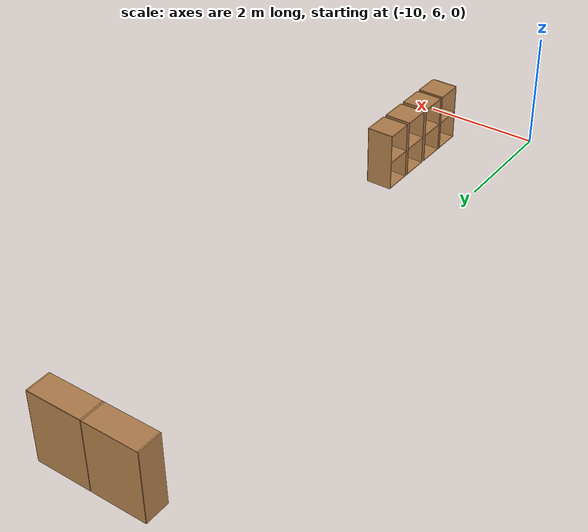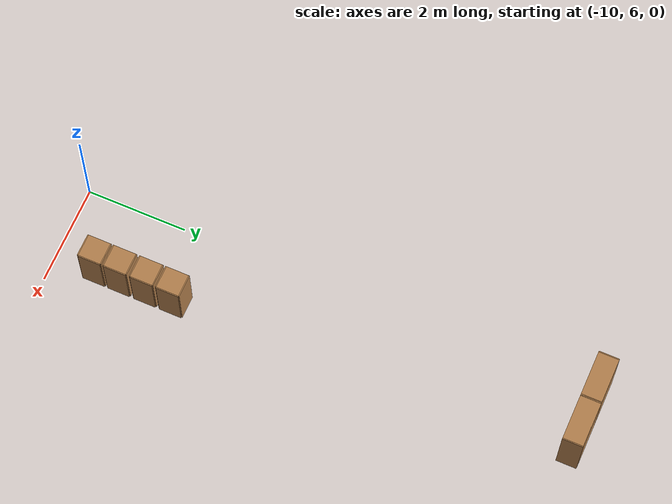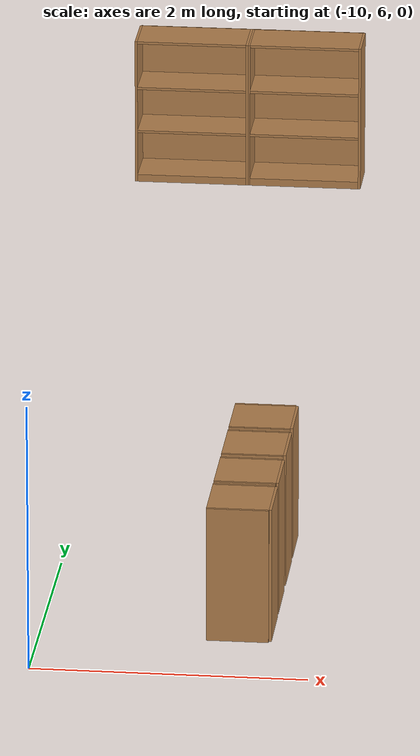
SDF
<sdf version="1.6">
 <world name="default">
  <light name="sun" type="directional">
   <pose>0 0 10 0 -0 0</pose>
   <diffuse>0.8 0.8 0.8 1</diffuse>
   <specular>0.2 0.2 0.2 1</specular>
   <attenuation>
    <range>1000</range>
    <constant>0.9</constant>
    <linear>0.01</linear>
    <quadratic>0.001</quadratic>
   </attenuation>
   <direction>-0.5 0.1 -0.9</direction>
  </light>
  <gravity>0 0 -9.8</gravity>
  <magnetic_field>6e-06 2.3e-05 -4.2e-05</magnetic_field>
  <atmosphere type="adiabatic"/>
  <physics name="default_physics" default="0" type="ode">
   <max_step_size>0.001</max_step_size>
   <real_time_factor>1</real_time_factor>
   <real_time_update_rate>1000</real_time_update_rate>
  </physics>
  <scene><ambient>0.4 0.4 0.4 1</ambient><background>0.7 0.7 0.7 1</background><shadows>1</shadows></scene>
  <audio><device>default</device></audio>
  <spherical_coordinates>
   <surface_model>EARTH_WGS84</surface_model>
   <latitude_deg>0</latitude_deg>
   <longitude_deg>0</longitude_deg>
   <elevation>0</elevation>
   <heading_deg>0</heading_deg>
  </spherical_coordinates>
  <model name="bookshelf">
   <static>1</static>
   <link name="link">
    <inertial><mass>1</mass></inertial>
    <collision name="back">
     <pose>0 0.005 0.6 0 -0 0</pose>
     <geometry><box><size>0.9 0.01 1.2</size></box></geometry>
    </collision>
    <visual name="visual1">
     <pose>0 0.005 0.6 0 -0 0</pose>
     <geometry><box><size>0.9 0.01 1.2</size></box></geometry>
     <material>
      <script><uri>file://media/materials/scripts/gazebo.material</uri><name>Gazebo/Wood</name></script>
     </material>
    </visual>
    <collision name="left_side">
     <pose>0.45 -0.195 0.6 0 -0 0</pose>
     <geometry><box><size>0.02 0.4 1.2</size></box></geometry>
    </collision>
    <visual name="visual2">
     <pose>0.45 -0.195 0.6 0 -0 0</pose>
     <geometry><box><size>0.02 0.4 1.2</size></box></geometry>
     <material>
      <script><uri>file://media/materials/scripts/gazebo.material</uri><name>Gazebo/Wood</name></script>
     </material>
    </visual>
    <collision name="right_side">
     <pose>-0.45 -0.195 0.6 0 -0 0</pose>
     <geometry><box><size>0.02 0.4 1.2</size></box></geometry>
    </collision>
    <visual name="visual3">
     <pose>-0.45 -0.195 0.6 0 -0 0</pose>
     <geometry><box><size>0.02 0.4 1.2</size></box></geometry>
     <material>
      <script><uri>file://media/materials/scripts/gazebo.material</uri><name>Gazebo/Wood</name></script>
     </material>
    </visual>
    <collision name="bottom">
     <pose>0 -0.195 0.03 0 -0 0</pose>
     <geometry><box><size>0.88 0.4 0.06</size></box></geometry>
    </collision>
    <visual name="visual4">
     <pose>0 -0.195 0.03 0 -0 0</pose>
     <geometry><box><size>0.88 0.4 0.06</size></box></geometry>
     <material>
      <script><uri>file://media/materials/scripts/gazebo.material</uri><name>Gazebo/Wood</name></script>
     </material>
    </visual>
    <collision name="top">
     <pose>0 -0.195 1.19 0 -0 0</pose>
     <geometry><box><size>0.88 0.4 0.02</size></box></geometry>
    </collision>
    <visual name="visual5">
     <pose>0 -0.195 1.19 0 -0 0</pose>
     <geometry><box><size>0.88 0.4 0.02</size></box></geometry>
     <material>
      <script><uri>file://media/materials/scripts/gazebo.material</uri><name>Gazebo/Wood</name></script>
     </material>
    </visual>
    <collision name="low_shelf">
     <pose>0 -0.195 0.43 0 -0 0</pose>
     <geometry><box><size>0.88 0.4 0.02</size></box></geometry>
    </collision>
    <visual name="visual6">
     <pose>0 -0.195 0.43 0 -0 0</pose>
     <geometry><box><size>0.88 0.4 0.02</size></box></geometry>
     <material>
      <script><uri>file://media/materials/scripts/gazebo.material</uri><name>Gazebo/Wood</name></script>
     </material>
    </visual>
    <collision name="high_shelf">
     <pose>0 -0.195 0.8 0 -0 0</pose>
     <geometry><box><size>0.88 0.4 0.02</size></box></geometry>
    </collision>
    <visual name="visual7">
     <pose>0 -0.195 0.8 0 -0 0</pose>
     <geometry><box><size>0.88 0.4 0.02</size></box></geometry>
     <material>
      <script><uri>file://media/materials/scripts/gazebo.material</uri><name>Gazebo/Wood</name></script>
     </material>
    </visual>
   </link>
   <pose>-8.98827 16.5746 0 0 -0 0</pose>
  </model>
  <model name="bookshelf_0">
   <static>1</static>
   <link name="link">
    <inertial><mass>1</mass></inertial>
    <collision name="back">
     <pose>0 0.005 0.6 0 -0 0</pose>
     <geometry><box><size>0.9 0.01 1.2</size></box></geometry>
    </collision>
    <visual name="visual1">
     <pose>0 0.005 0.6 0 -0 0</pose>
     <geometry><box><size>0.9 0.01 1.2</size></box></geometry>
     <material>
      <script><uri>file://media/materials/scripts/gazebo.material</uri><name>Gazebo/Wood</name></script>
     </material>
    </visual>
    <collision name="left_side">
     <pose>0.45 -0.195 0.6 0 -0 0</pose>
     <geometry><box><size>0.02 0.4 1.2</size></box></geometry>
    </collision>
    <visual name="visual2">
     <pose>0.45 -0.195 0.6 0 -0 0</pose>
     <geometry><box><size>0.02 0.4 1.2</size></box></geometry>
     <material>
      <script><uri>file://media/materials/scripts/gazebo.material</uri><name>Gazebo/Wood</name></script>
     </material>
    </visual>
    <collision name="right_side">
     <pose>-0.45 -0.195 0.6 0 -0 0</pose>
     <geometry><box><size>0.02 0.4 1.2</size></box></geometry>
    </collision>
    <visual name="visual3">
     <pose>-0.45 -0.195 0.6 0 -0 0</pose>
     <geometry><box><size>0.02 0.4 1.2</size></box></geometry>
     <material>
      <script><uri>file://media/materials/scripts/gazebo.material</uri><name>Gazebo/Wood</name></script>
     </material>
    </visual>
    <collision name="bottom">
     <pose>0 -0.195 0.03 0 -0 0</pose>
     <geometry><box><size>0.88 0.4 0.06</size></box></geometry>
    </collision>
    <visual name="visual4">
     <pose>0 -0.195 0.03 0 -0 0</pose>
     <geometry><box><size>0.88 0.4 0.06</size></box></geometry>
     <material>
      <script><uri>file://media/materials/scripts/gazebo.material</uri><name>Gazebo/Wood</name></script>
     </material>
    </visual>
    <collision name="top">
     <pose>0 -0.195 1.19 0 -0 0</pose>
     <geometry><box><size>0.88 0.4 0.02</size></box></geometry>
    </collision>
    <visual name="visual5">
     <pose>0 -0.195 1.19 0 -0 0</pose>
     <geometry><box><size>0.88 0.4 0.02</size></box></geometry>
     <material>
      <script><uri>file://media/materials/scripts/gazebo.material</uri><name>Gazebo/Wood</name></script>
     </material>
    </visual>
    <collision name="low_shelf">
     <pose>0 -0.195 0.43 0 -0 0</pose>
     <geometry><box><size>0.88 0.4 0.02</size></box></geometry>
    </collision>
    <visual name="visual6">
     <pose>0 -0.195 0.43 0 -0 0</pose>
     <geometry><box><size>0.88 0.4 0.02</size></box></geometry>
     <material>
      <script><uri>file://media/materials/scripts/gazebo.material</uri><name>Gazebo/Wood</name></script>
     </material>
    </visual>
    <collision name="high_shelf">
     <pose>0 -0.195 0.8 0 -0 0</pose>
     <geometry><box><size>0.88 0.4 0.02</size></box></geometry>
    </collision>
    <visual name="visual7">
     <pose>0 -0.195 0.8 0 -0 0</pose>
     <geometry><box><size>0.88 0.4 0.02</size></box></geometry>
     <material>
      <script><uri>file://media/materials/scripts/gazebo.material</uri><name>Gazebo/Wood</name></script>
     </material>
    </visual>
   </link>
   <pose>-9.90323 16.5746 0 0 -0 0</pose>
  </model>
  <light name="user_spot_light_0" type="spot">
   <pose>-15.2744 10.7249 1 0 -0 0</pose>
   <diffuse>0.5 0.5 0.5 1</diffuse>
   <specular>0.1 0.1 0.1 1</specular>
   <direction>0 0 -1</direction>
   <attenuation>
    <range>20</range>
    <constant>0.5</constant>
    <linear>0.01</linear>
    <quadratic>0.001</quadratic>
   </attenuation>
   <cast_shadows>0</cast_shadows>
   <spot><inner_angle>0.6</inner_angle><outer_angle>1</outer_angle><falloff>1</falloff></spot>
  </light>
  <light name="user_point_light_0" type="point">
   <pose>-15.4274 10.7578 1 0 -0 0</pose>
   <diffuse>0.5 0.5 0.5 1</diffuse>
   <specular>0.1 0.1 0.1 1</specular>
   <attenuation>
    <range>20</range>
    <constant>0.5</constant>
    <linear>0.01</linear>
    <quadratic>0.001</quadratic>
   </attenuation>
   <cast_shadows>0</cast_shadows>
   <direction>0 0 -1</direction>
  </light>
  <model name="cabinet">
   <static>1</static>
   <link name="cabinet_bottom_plate">
    <inertial>
     <pose>0 0 -1 0 -0 0</pose>
     <inertia><ixx>2.05</ixx><ixy>0</ixy><ixz>0</ixz><iyy>2.05</iyy><iyz>0</iyz><izz>2.05</izz></inertia>
     <mass>25</mass>
    </inertial>
    <collision name="cabinet_bottom_plate_geom">
     <pose>0 0 0.01 0 -0 0</pose>
     <geometry><box><size>0.45 0.45 0.02</size></box></geometry>
    </collision>
    <visual name="cabinet_bottom_plate_geom_visual">
     <pose>0 0 0.01 0 -0 0</pose>
     <geometry><box><size>0.45 0.45 0.02</size></box></geometry>
     <material>
      <script><uri>file://media/materials/scripts/gazebo.material</uri><name>Gazebo/Wood</name></script>
     </material>
    </visual>
    <collision name="cabinet_bottom_plate_geom_cabinet_back_plate">
     <pose>0.235 0 0.51 0 -0 0</pose>
     <geometry><box><size>0.02 0.45 1.02</size></box></geometry>
    </collision>
    <visual name="cabinet_bottom_plate_geom_cabinet_back_plate_visual">
     <pose>0.235 0 0.51 0 -0 0</pose>
     <geometry><box><size>0.02 0.45 1.02</size></box></geometry>
     <material>
      <script><uri>file://media/materials/scripts/gazebo.material</uri><name>Gazebo/Wood</name></script>
     </material>
    </visual>
    <collision name="cabinet_bottom_plate_geom_cabinet_left_plate">
     <pose>0 0.235 0.51 0 -0 0</pose>
     <geometry><box><size>0.45 0.02 1.02</size></box></geometry>
    </collision>
    <visual name="cabinet_bottom_plate_geom_cabinet_left_plate_visual">
     <pose>0 0.235 0.51 0 -0 0</pose>
     <geometry><box><size>0.45 0.02 1.02</size></box></geometry>
     <material>
      <script><uri>file://media/materials/scripts/gazebo.material</uri><name>Gazebo/Wood</name></script>
     </material>
    </visual>
    <collision name="cabinet_bottom_plate_geom_cabinet_middle_plate">
     <pose>0 0 0.51 0 -0 0</pose>
     <geometry><box><size>0.45 0.45 0.02</size></box></geometry>
    </collision>
    <visual name="cabinet_bottom_plate_geom_cabinet_middle_plate_visual">
     <pose>0 0 0.51 0 -0 0</pose>
     <geometry><box><size>0.45 0.45 0.02</size></box></geometry>
     <material>
      <script><uri>file://media/materials/scripts/gazebo.material</uri><name>Gazebo/Wood</name></script>
     </material>
    </visual>
    <collision name="cabinet_bottom_plate_geom_cabinet_right_plate">
     <pose>0 -0.235 0.51 0 -0 0</pose>
     <geometry><box><size>0.45 0.02 1.02</size></box></geometry>
    </collision>
    <visual name="cabinet_bottom_plate_geom_cabinet_right_plate_visual">
     <pose>0 -0.235 0.51 0 -0 0</pose>
     <geometry><box><size>0.45 0.02 1.02</size></box></geometry>
     <material>
      <script><uri>file://media/materials/scripts/gazebo.material</uri><name>Gazebo/Wood</name></script>
     </material>
    </visual>
    <collision name="cabinet_bottom_plate_geom_cabinet_top_plate">
     <pose>0 0 1.01 0 -0 0</pose>
     <geometry><box><size>0.45 0.45 0.02</size></box></geometry>
    </collision>
    <visual name="cabinet_bottom_plate_geom_cabinet_top_plate_visual">
     <pose>0 0 1.01 0 -0 0</pose>
     <geometry><box><size>0.45 0.45 0.02</size></box></geometry>
     <material>
      <script><uri>file://media/materials/scripts/gazebo.material</uri><name>Gazebo/Wood</name></script>
     </material>
    </visual>
   </link>
   <pose>-8.57161 8.48677 0 0 -0 0</pose>
  </model>
  <model name="cabinet_0">
   <static>1</static>
   <link name="cabinet_bottom_plate">
    <inertial>
     <pose>0 0 -1 0 -0 0</pose>
     <inertia><ixx>2.05</ixx><ixy>0</ixy><ixz>0</ixz><iyy>2.05</iyy><iyz>0</iyz><izz>2.05</izz></inertia>
     <mass>25</mass>
    </inertial>
    <collision name="cabinet_bottom_plate_geom">
     <pose>0 0 0.01 0 -0 0</pose>
     <geometry><box><size>0.45 0.45 0.02</size></box></geometry>
    </collision>
    <visual name="cabinet_bottom_plate_geom_visual">
     <pose>0 0 0.01 0 -0 0</pose>
     <geometry><box><size>0.45 0.45 0.02</size></box></geometry>
     <material>
      <script><uri>file://media/materials/scripts/gazebo.material</uri><name>Gazebo/Wood</name></script>
     </material>
    </visual>
    <collision name="cabinet_bottom_plate_geom_cabinet_back_plate">
     <pose>0.235 0 0.51 0 -0 0</pose>
     <geometry><box><size>0.02 0.45 1.02</size></box></geometry>
    </collision>
    <visual name="cabinet_bottom_plate_geom_cabinet_back_plate_visual">
     <pose>0.235 0 0.51 0 -0 0</pose>
     <geometry><box><size>0.02 0.45 1.02</size></box></geometry>
     <material>
      <script><uri>file://media/materials/scripts/gazebo.material</uri><name>Gazebo/Wood</name></script>
     </material>
    </visual>
    <collision name="cabinet_bottom_plate_geom_cabinet_left_plate">
     <pose>0 0.235 0.51 0 -0 0</pose>
     <geometry><box><size>0.45 0.02 1.02</size></box></geometry>
    </collision>
    <visual name="cabinet_bottom_plate_geom_cabinet_left_plate_visual">
     <pose>0 0.235 0.51 0 -0 0</pose>
     <geometry><box><size>0.45 0.02 1.02</size></box></geometry>
     <material>
      <script><uri>file://media/materials/scripts/gazebo.material</uri><name>Gazebo/Wood</name></script>
     </material>
    </visual>
    <collision name="cabinet_bottom_plate_geom_cabinet_middle_plate">
     <pose>0 0 0.51 0 -0 0</pose>
     <geometry><box><size>0.45 0.45 0.02</size></box></geometry>
    </collision>
    <visual name="cabinet_bottom_plate_geom_cabinet_middle_plate_visual">
     <pose>0 0 0.51 0 -0 0</pose>
     <geometry><box><size>0.45 0.45 0.02</size></box></geometry>
     <material>
      <script><uri>file://media/materials/scripts/gazebo.material</uri><name>Gazebo/Wood</name></script>
     </material>
    </visual>
    <collision name="cabinet_bottom_plate_geom_cabinet_right_plate">
     <pose>0 -0.235 0.51 0 -0 0</pose>
     <geometry><box><size>0.45 0.02 1.02</size></box></geometry>
    </collision>
    <visual name="cabinet_bottom_plate_geom_cabinet_right_plate_visual">
     <pose>0 -0.235 0.51 0 -0 0</pose>
     <geometry><box><size>0.45 0.02 1.02</size></box></geometry>
     <material>
      <script><uri>file://media/materials/scripts/gazebo.material</uri><name>Gazebo/Wood</name></script>
     </material>
    </visual>
    <collision name="cabinet_bottom_plate_geom_cabinet_top_plate">
     <pose>0 0 1.01 0 -0 0</pose>
     <geometry><box><size>0.45 0.45 0.02</size></box></geometry>
    </collision>
    <visual name="cabinet_bottom_plate_geom_cabinet_top_plate_visual">
     <pose>0 0 1.01 0 -0 0</pose>
     <geometry><box><size>0.45 0.45 0.02</size></box></geometry>
     <material>
      <script><uri>file://media/materials/scripts/gazebo.material</uri><name>Gazebo/Wood</name></script>
     </material>
    </visual>
   </link>
   <pose>-8.57161 7.95351 0 0 -0 0</pose>
  </model>
  <model name="cabinet_1">
   <static>1</static>
   <link name="cabinet_bottom_plate">
    <inertial>
     <pose>0 0 -1 0 -0 0</pose>
     <inertia><ixx>2.05</ixx><ixy>0</ixy><ixz>0</ixz><iyy>2.05</iyy><iyz>0</iyz><izz>2.05</izz></inertia>
     <mass>25</mass>
    </inertial>
    <collision name="cabinet_bottom_plate_geom">
     <pose>0 0 0.01 0 -0 0</pose>
     <geometry><box><size>0.45 0.45 0.02</size></box></geometry>
    </collision>
    <visual name="cabinet_bottom_plate_geom_visual">
     <pose>0 0 0.01 0 -0 0</pose>
     <geometry><box><size>0.45 0.45 0.02</size></box></geometry>
     <material>
      <script><uri>file://media/materials/scripts/gazebo.material</uri><name>Gazebo/Wood</name></script>
     </material>
    </visual>
    <collision name="cabinet_bottom_plate_geom_cabinet_back_plate">
     <pose>0.235 0 0.51 0 -0 0</pose>
     <geometry><box><size>0.02 0.45 1.02</size></box></geometry>
    </collision>
    <visual name="cabinet_bottom_plate_geom_cabinet_back_plate_visual">
     <pose>0.235 0 0.51 0 -0 0</pose>
     <geometry><box><size>0.02 0.45 1.02</size></box></geometry>
     <material>
      <script><uri>file://media/materials/scripts/gazebo.material</uri><name>Gazebo/Wood</name></script>
     </material>
    </visual>
    <collision name="cabinet_bottom_plate_geom_cabinet_left_plate">
     <pose>0 0.235 0.51 0 -0 0</pose>
     <geometry><box><size>0.45 0.02 1.02</size></box></geometry>
    </collision>
    <visual name="cabinet_bottom_plate_geom_cabinet_left_plate_visual">
     <pose>0 0.235 0.51 0 -0 0</pose>
     <geometry><box><size>0.45 0.02 1.02</size></box></geometry>
     <material>
      <script><uri>file://media/materials/scripts/gazebo.material</uri><name>Gazebo/Wood</name></script>
     </material>
    </visual>
    <collision name="cabinet_bottom_plate_geom_cabinet_middle_plate">
     <pose>0 0 0.51 0 -0 0</pose>
     <geometry><box><size>0.45 0.45 0.02</size></box></geometry>
    </collision>
    <visual name="cabinet_bottom_plate_geom_cabinet_middle_plate_visual">
     <pose>0 0 0.51 0 -0 0</pose>
     <geometry><box><size>0.45 0.45 0.02</size></box></geometry>
     <material>
      <script><uri>file://media/materials/scripts/gazebo.material</uri><name>Gazebo/Wood</name></script>
     </material>
    </visual>
    <collision name="cabinet_bottom_plate_geom_cabinet_right_plate">
     <pose>0 -0.235 0.51 0 -0 0</pose>
     <geometry><box><size>0.45 0.02 1.02</size></box></geometry>
    </collision>
    <visual name="cabinet_bottom_plate_geom_cabinet_right_plate_visual">
     <pose>0 -0.235 0.51 0 -0 0</pose>
     <geometry><box><size>0.45 0.02 1.02</size></box></geometry>
     <material>
      <script><uri>file://media/materials/scripts/gazebo.material</uri><name>Gazebo/Wood</name></script>
     </material>
    </visual>
    <collision name="cabinet_bottom_plate_geom_cabinet_top_plate">
     <pose>0 0 1.01 0 -0 0</pose>
     <geometry><box><size>0.45 0.45 0.02</size></box></geometry>
    </collision>
    <visual name="cabinet_bottom_plate_geom_cabinet_top_plate_visual">
     <pose>0 0 1.01 0 -0 0</pose>
     <geometry><box><size>0.45 0.45 0.02</size></box></geometry>
     <material>
      <script><uri>file://media/materials/scripts/gazebo.material</uri><name>Gazebo/Wood</name></script>
     </material>
    </visual>
   </link>
   <pose>-8.57161 7.41211 0 0 -0 0</pose>
  </model>
  <model name="cabinet_2">
   <static>1</static>
   <link name="cabinet_bottom_plate">
    <inertial>
     <pose>0 0 -1 0 -0 0</pose>
     <inertia><ixx>2.05</ixx><ixy>0</ixy><ixz>0</ixz><iyy>2.05</iyy><iyz>0</iyz><izz>2.05</izz></inertia>
     <mass>25</mass>
    </inertial>
    <collision name="cabinet_bottom_plate_geom">
     <pose>0 0 0.01 0 -0 0</pose>
     <geometry><box><size>0.45 0.45 0.02</size></box></geometry>
    </collision>
    <visual name="cabinet_bottom_plate_geom_visual">
     <pose>0 0 0.01 0 -0 0</pose>
     <geometry><box><size>0.45 0.45 0.02</size></box></geometry>
     <material>
      <script><uri>file://media/materials/scripts/gazebo.material</uri><name>Gazebo/Wood</name></script>
     </material>
    </visual>
    <collision name="cabinet_bottom_plate_geom_cabinet_back_plate">
     <pose>0.235 0 0.51 0 -0 0</pose>
     <geometry><box><size>0.02 0.45 1.02</size></box></geometry>
    </collision>
    <visual name="cabinet_bottom_plate_geom_cabinet_back_plate_visual">
     <pose>0.235 0 0.51 0 -0 0</pose>
     <geometry><box><size>0.02 0.45 1.02</size></box></geometry>
     <material>
      <script><uri>file://media/materials/scripts/gazebo.material</uri><name>Gazebo/Wood</name></script>
     </material>
    </visual>
    <collision name="cabinet_bottom_plate_geom_cabinet_left_plate">
     <pose>0 0.235 0.51 0 -0 0</pose>
     <geometry><box><size>0.45 0.02 1.02</size></box></geometry>
    </collision>
    <visual name="cabinet_bottom_plate_geom_cabinet_left_plate_visual">
     <pose>0 0.235 0.51 0 -0 0</pose>
     <geometry><box><size>0.45 0.02 1.02</size></box></geometry>
     <material>
      <script><uri>file://media/materials/scripts/gazebo.material</uri><name>Gazebo/Wood</name></script>
     </material>
    </visual>
    <collision name="cabinet_bottom_plate_geom_cabinet_middle_plate">
     <pose>0 0 0.51 0 -0 0</pose>
     <geometry><box><size>0.45 0.45 0.02</size></box></geometry>
    </collision>
    <visual name="cabinet_bottom_plate_geom_cabinet_middle_plate_visual">
     <pose>0 0 0.51 0 -0 0</pose>
     <geometry><box><size>0.45 0.45 0.02</size></box></geometry>
     <material>
      <script><uri>file://media/materials/scripts/gazebo.material</uri><name>Gazebo/Wood</name></script>
     </material>
    </visual>
    <collision name="cabinet_bottom_plate_geom_cabinet_right_plate">
     <pose>0 -0.235 0.51 0 -0 0</pose>
     <geometry><box><size>0.45 0.02 1.02</size></box></geometry>
    </collision>
    <visual name="cabinet_bottom_plate_geom_cabinet_right_plate_visual">
     <pose>0 -0.235 0.51 0 -0 0</pose>
     <geometry><box><size>0.45 0.02 1.02</size></box></geometry>
     <material>
      <script><uri>file://media/materials/scripts/gazebo.material</uri><name>Gazebo/Wood</name></script>
     </material>
    </visual>
    <collision name="cabinet_bottom_plate_geom_cabinet_top_plate">
     <pose>0 0 1.01 0 -0 0</pose>
     <geometry><box><size>0.45 0.45 0.02</size></box></geometry>
    </collision>
    <visual name="cabinet_bottom_plate_geom_cabinet_top_plate_visual">
     <pose>0 0 1.01 0 -0 0</pose>
     <geometry><box><size>0.45 0.45 0.02</size></box></geometry>
     <material>
      <script><uri>file://media/materials/scripts/gazebo.material</uri><name>Gazebo/Wood</name></script>
     </material>
    </visual>
   </link>
   <pose>-8.57161 6.89093 0 0 -0 0</pose>
  </model>
 </world>
</sdf>
